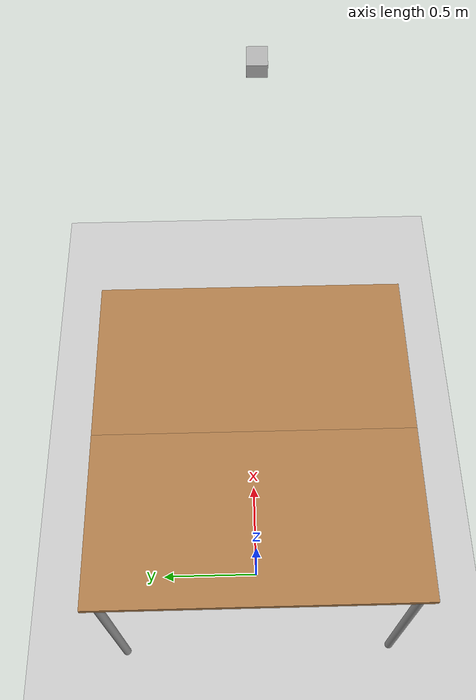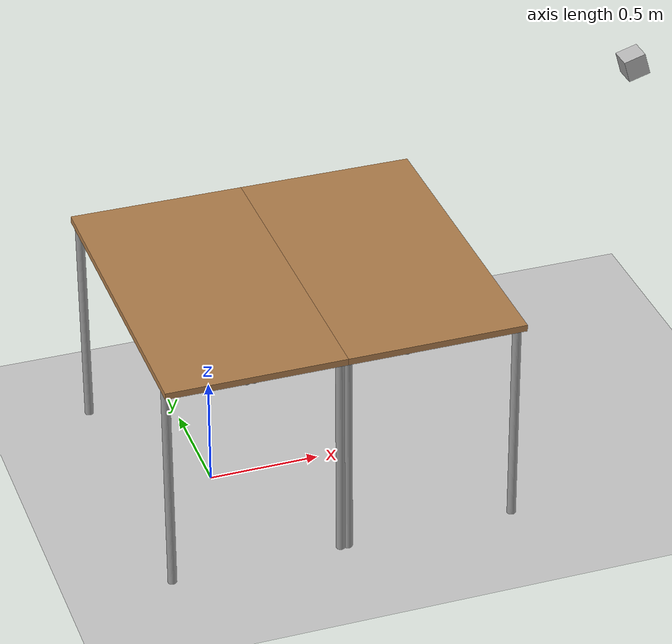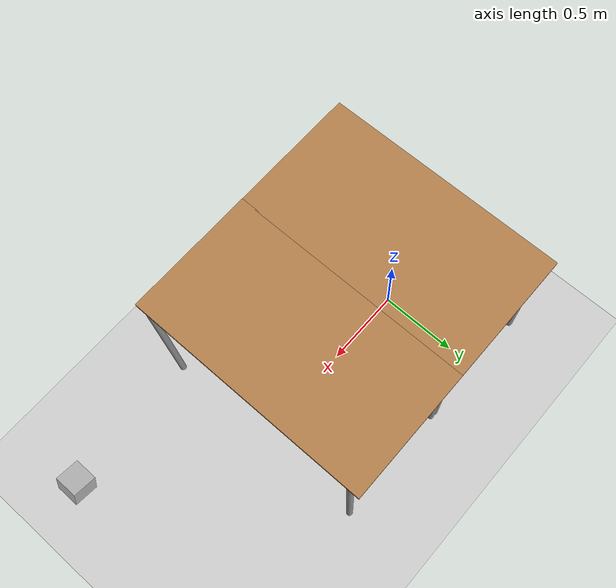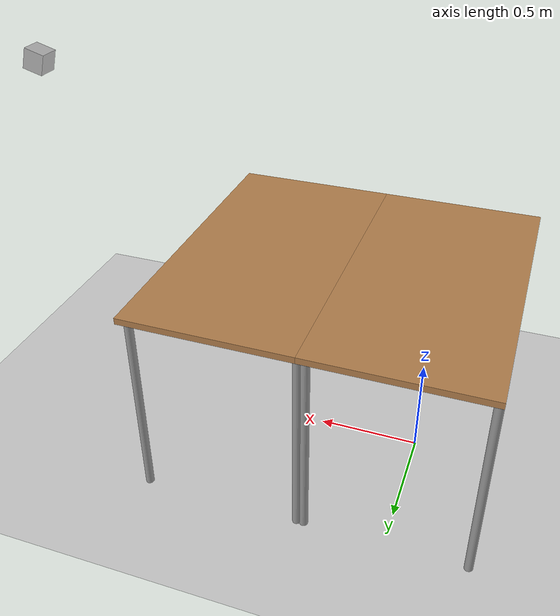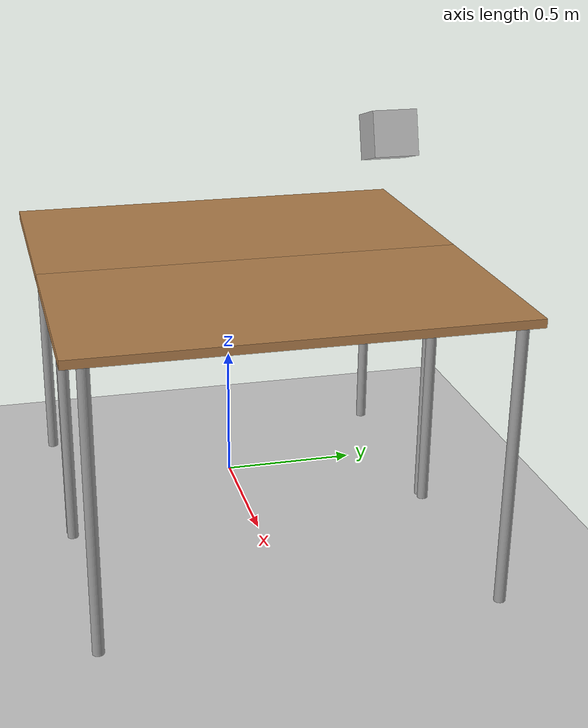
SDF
<sdf version='1.7'>
  <world name='panda_world'>
    <plugin name='ignition::gazebo::systems::Physics' filename='ignition-gazebo-physics-system'/>
    <plugin name='ignition::gazebo::systems::Sensors' filename='ignition-gazebo-sensors-system'>
      <render_engine>ogre2</render_engine>
    </plugin>
    <light name='sun' type='directional'>
      <cast_shadows>1</cast_shadows>
      <pose>0 0 10 0 -0 0</pose>
      <diffuse>0.8 0.8 0.8 1</diffuse>
      <specular>0.2 0.2 0.2 1</specular>
      <attenuation>
        <range>1000</range>
        <constant>0.9</constant>
        <linear>0.01</linear>
        <quadratic>0.001</quadratic>
      </attenuation>
      <direction>-0.5 0.1 -0.9</direction>
      <spot>
        <inner_angle>0</inner_angle>
        <outer_angle>0</outer_angle>
        <falloff>0</falloff>
      </spot>
    </light>
    <gravity>0 0 -9.8</gravity>
    <magnetic_field>6e-06 2.3e-05 -4.2e-05</magnetic_field>
    <atmosphere type='adiabatic'/>
    <scene>
      <ambient>0.4 0.4 0.4 1</ambient>
      <background>0.7 0.7 0.7 1</background>
      <shadows>1</shadows>
    </scene>
    <model name='ground_plane'>
      <static>1</static>
      <link name='link'>
        <collision name='collision'>
          <geometry>
            <plane>
              <normal>0 0 1</normal>
              <size>100 100</size>
            </plane>
          </geometry>
          <surface>
            <friction>
              <ode/>
            </friction>
            <contact/>
          </surface>
        </collision>
        <visual name='visual'>
          <geometry>
            <plane>
              <normal>0 0 1</normal>
              <size>100 100</size>
            </plane>
          </geometry>
          <material>
            <ambient>0.8 0.8 0.8 1</ambient>
            <diffuse>0.8 0.8 0.8 1</diffuse>
            <specular>0.8 0.8 0.8 1</specular>
          </material>
          <plugin name='__default__' filename='__default__'/>
        </visual>
      </link>
      <plugin name='__default__' filename='__default__'/>
      <pose>0 0 0 0 -0 0</pose>
    </model>
    <model name='table1'>
      <static>1</static>
      <link name='link'>
        <collision name='surface'>
          <pose>0 0 1 0 -0 0</pose>
          <geometry>
            <box>
              <size>1.5 0.8 0.03</size>
            </box>
          </geometry>
          <surface>
            <friction>
              <ode>
                <mu>0.6</mu>
                <mu2>0.6</mu2>
              </ode>
            </friction>
            <contact/>
          </surface>
        </collision>
        <visual name='visual1'>
          <pose>0 0 1 0 -0 0</pose>
          <geometry>
            <box>
              <size>1.5 0.8 0.03</size>
            </box>
          </geometry>
          <material>
            <diffuse>1 1 1 1</diffuse>
            <script>
              <uri>file://media/materials/scripts/gazebo.material</uri>
              <name>Gazebo/Wood</name>
            </script>
            <pbr>
              <metal>
                <albedo_map>https://fuel.ignitionrobotics.org/1.0/openrobotics/models/table/3/files/Table_Diffuse.jpg</albedo_map>
              </metal>
            </pbr>
          </material>
          <plugin name='__default__' filename='__default__'/>
        </visual>
        <collision name='front_left_leg'>
          <pose>0.68 0.38 0.5 0 -0 0</pose>
          <geometry>
            <cylinder>
              <radius>0.02</radius>
              <length>1</length>
            </cylinder>
          </geometry>
          <surface>
            <friction>
              <ode/>
            </friction>
            <contact/>
          </surface>
        </collision>
        <visual name='front_left_leg'>
          <pose>0.68 0.38 0.5 0 -0 0</pose>
          <geometry>
            <cylinder>
              <radius>0.02</radius>
              <length>1</length>
            </cylinder>
          </geometry>
          <material>
            <diffuse>0.5 0.5 0.5 1</diffuse>
            <script>
              <uri>file://media/materials/scripts/gazebo.material</uri>
              <name>Gazebo/Grey</name>
            </script>
          </material>
          <plugin name='__default__' filename='__default__'/>
        </visual>
        <collision name='front_right_leg'>
          <pose>0.68 -0.38 0.5 0 -0 0</pose>
          <geometry>
            <cylinder>
              <radius>0.02</radius>
              <length>1</length>
            </cylinder>
          </geometry>
          <surface>
            <friction>
              <ode/>
            </friction>
            <contact/>
          </surface>
        </collision>
        <visual name='front_right_leg'>
          <pose>0.68 -0.38 0.5 0 -0 0</pose>
          <geometry>
            <cylinder>
              <radius>0.02</radius>
              <length>1</length>
            </cylinder>
          </geometry>
          <material>
            <diffuse>0.5 0.5 0.5 1</diffuse>
            <script>
              <uri>file://media/materials/scripts/gazebo.material</uri>
              <name>Gazebo/Grey</name>
            </script>
          </material>
          <plugin name='__default__' filename='__default__'/>
        </visual>
        <collision name='back_right_leg'>
          <pose>-0.68 -0.38 0.5 0 -0 0</pose>
          <geometry>
            <cylinder>
              <radius>0.02</radius>
              <length>1</length>
            </cylinder>
          </geometry>
          <surface>
            <friction>
              <ode/>
            </friction>
            <contact/>
          </surface>
        </collision>
        <visual name='back_right_leg'>
          <pose>-0.68 -0.38 0.5 0 -0 0</pose>
          <geometry>
            <cylinder>
              <radius>0.02</radius>
              <length>1</length>
            </cylinder>
          </geometry>
          <material>
            <diffuse>0.5 0.5 0.5 1</diffuse>
            <script>
              <uri>file://media/materials/scripts/gazebo.material</uri>
              <name>Gazebo/Grey</name>
            </script>
          </material>
          <plugin name='__default__' filename='__default__'/>
        </visual>
        <collision name='back_left_leg'>
          <pose>-0.68 0.38 0.5 0 -0 0</pose>
          <geometry>
            <cylinder>
              <radius>0.02</radius>
              <length>1</length>
            </cylinder>
          </geometry>
          <surface>
            <friction>
              <ode/>
            </friction>
            <contact/>
          </surface>
        </collision>
        <visual name='back_left_leg'>
          <pose>-0.68 0.38 0.5 0 -0 0</pose>
          <geometry>
            <cylinder>
              <radius>0.02</radius>
              <length>1</length>
            </cylinder>
          </geometry>
          <material>
            <diffuse>0.5 0.5 0.5 1</diffuse>
            <script>
              <uri>file://media/materials/scripts/gazebo.material</uri>
              <name>Gazebo/Grey</name>
            </script>
          </material>
          <plugin name='__default__' filename='__default__'/>
        </visual>
      </link>
      <pose>0 0 0 0 -0 1.5708</pose>
      <plugin name='__default__' filename='__default__'/>
    </model>
    <model name='table2'>
      <static>1</static>
      <link name='link'>
        <collision name='surface'>
          <pose>0 0 1 0 -0 0</pose>
          <geometry>
            <box>
              <size>1.5 0.8 0.03</size>
            </box>
          </geometry>
          <surface>
            <friction>
              <ode>
                <mu>0.6</mu>
                <mu2>0.6</mu2>
              </ode>
            </friction>
            <contact/>
          </surface>
        </collision>
        <visual name='visual1'>
          <pose>0 0 1 0 -0 0</pose>
          <geometry>
            <box>
              <size>1.5 0.8 0.03</size>
            </box>
          </geometry>
          <material>
            <diffuse>1 1 1 1</diffuse>
            <script>
              <uri>file://media/materials/scripts/gazebo.material</uri>
              <name>Gazebo/Wood</name>
            </script>
            <pbr>
              <metal>
                <albedo_map>https://fuel.ignitionrobotics.org/1.0/openrobotics/models/table/3/files/Table_Diffuse.jpg</albedo_map>
              </metal>
            </pbr>
          </material>
          <plugin name='__default__' filename='__default__'/>
        </visual>
        <collision name='front_left_leg'>
          <pose>0.68 0.38 0.5 0 -0 0</pose>
          <geometry>
            <cylinder>
              <radius>0.02</radius>
              <length>1</length>
            </cylinder>
          </geometry>
          <surface>
            <friction>
              <ode/>
            </friction>
            <contact/>
          </surface>
        </collision>
        <visual name='front_left_leg'>
          <pose>0.68 0.38 0.5 0 -0 0</pose>
          <geometry>
            <cylinder>
              <radius>0.02</radius>
              <length>1</length>
            </cylinder>
          </geometry>
          <material>
            <diffuse>0.5 0.5 0.5 1</diffuse>
            <script>
              <uri>file://media/materials/scripts/gazebo.material</uri>
              <name>Gazebo/Grey</name>
            </script>
          </material>
          <plugin name='__default__' filename='__default__'/>
        </visual>
        <collision name='front_right_leg'>
          <pose>0.68 -0.38 0.5 0 -0 0</pose>
          <geometry>
            <cylinder>
              <radius>0.02</radius>
              <length>1</length>
            </cylinder>
          </geometry>
          <surface>
            <friction>
              <ode/>
            </friction>
            <contact/>
          </surface>
        </collision>
        <visual name='front_right_leg'>
          <pose>0.68 -0.38 0.5 0 -0 0</pose>
          <geometry>
            <cylinder>
              <radius>0.02</radius>
              <length>1</length>
            </cylinder>
          </geometry>
          <material>
            <diffuse>0.5 0.5 0.5 1</diffuse>
            <script>
              <uri>file://media/materials/scripts/gazebo.material</uri>
              <name>Gazebo/Grey</name>
            </script>
          </material>
          <plugin name='__default__' filename='__default__'/>
        </visual>
        <collision name='back_right_leg'>
          <pose>-0.68 -0.38 0.5 0 -0 0</pose>
          <geometry>
            <cylinder>
              <radius>0.02</radius>
              <length>1</length>
            </cylinder>
          </geometry>
          <surface>
            <friction>
              <ode/>
            </friction>
            <contact/>
          </surface>
        </collision>
        <visual name='back_right_leg'>
          <pose>-0.68 -0.38 0.5 0 -0 0</pose>
          <geometry>
            <cylinder>
              <radius>0.02</radius>
              <length>1</length>
            </cylinder>
          </geometry>
          <material>
            <diffuse>0.5 0.5 0.5 1</diffuse>
            <script>
              <uri>file://media/materials/scripts/gazebo.material</uri>
              <name>Gazebo/Grey</name>
            </script>
          </material>
          <plugin name='__default__' filename='__default__'/>
        </visual>
        <collision name='back_left_leg'>
          <pose>-0.68 0.38 0.5 0 -0 0</pose>
          <geometry>
            <cylinder>
              <radius>0.02</radius>
              <length>1</length>
            </cylinder>
          </geometry>
          <surface>
            <friction>
              <ode/>
            </friction>
            <contact/>
          </surface>
        </collision>
        <visual name='back_left_leg'>
          <pose>-0.68 0.38 0.5 0 -0 0</pose>
          <geometry>
            <cylinder>
              <radius>0.02</radius>
              <length>1</length>
            </cylinder>
          </geometry>
          <material>
            <diffuse>0.5 0.5 0.5 1</diffuse>
            <script>
              <uri>file://media/materials/scripts/gazebo.material</uri>
              <name>Gazebo/Grey</name>
            </script>
          </material>
          <plugin name='__default__' filename='__default__'/>
        </visual>
      </link>
      <pose>0.794 0 0 0 -0 1.5708</pose>
      <plugin name='__default__' filename='__default__'/>
    </model>
    <model name='camera'>
      <static>1</static>
      <pose>2 0 1.75 -0 0.282863 3.14</pose>
      <link name='link'>
        <pose>0.05 0.05 0.05 0 -0 0</pose>
        <visual name='visual'>
          <geometry>
            <box>
              <size>0.1 0.1 0.1</size>
            </box>
          </geometry>
          <plugin name='__default__' filename='__default__'/>
        </visual>
        <sensor name='camera' type='camera'>
          <camera>
            <horizontal_fov>1.047</horizontal_fov>
            <image>
              <width>1920</width>
              <height>1080</height>
            </image>
            <clip>
              <near>0.1</near>
              <far>100</far>
            </clip>
          </camera>
          <always_on>1</always_on>
          <update_rate>30</update_rate>
          <visualize>1</visualize>
          <topic>camera</topic>
          <plugin name='__default__' filename='__default__'/>
        </sensor>
      </link>
      <plugin name='__default__' filename='__default__'/>
    </model>
  </world>
</sdf>
